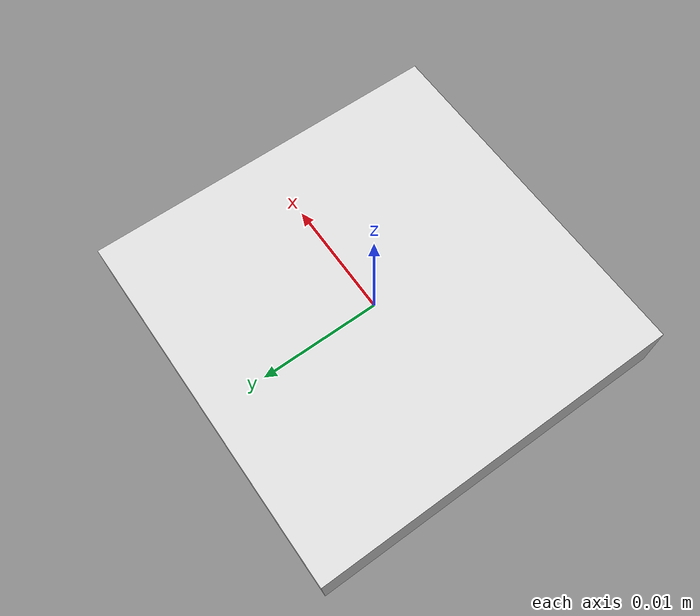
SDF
<sdf version='1.6'>
  <model name='cover'>
    <static>true</static>
    <link name='base_link'>
      <pose frame=''>0 0 0 0 -0 0</pose>
      <inertial>
        <pose frame=''>0 0 0 0 -0 0</pose>
        <mass>10.0</mass>
      </inertial>
      <collision name='base_link_collision'>
        <pose frame=''>0 0 0 0 -0 0</pose>
        <geometry>
          <box>
            <size>0.03 0.03 0.005</size>
          </box>
        </geometry>
        <surface>
          <friction>
            <ode>
              <mu>10.0</mu>
              <mu2>10.0</mu2>
            </ode>
          </friction>
        </surface>
      </collision>
      <visual name='base_link_visual'>
        <pose frame=''>0 0 0 0 -0 0</pose>
        <geometry>
          <box>
            <size>0.03 0.03 0.005</size>
          </box>
        </geometry>
        <material>
          <script>
            <name>Gazebo/White</name>
            <uri>file://media/materials/scripts/gazebo.material</uri>
          </script>
        </material>
      </visual>
    </link>
  </model>
</sdf>
